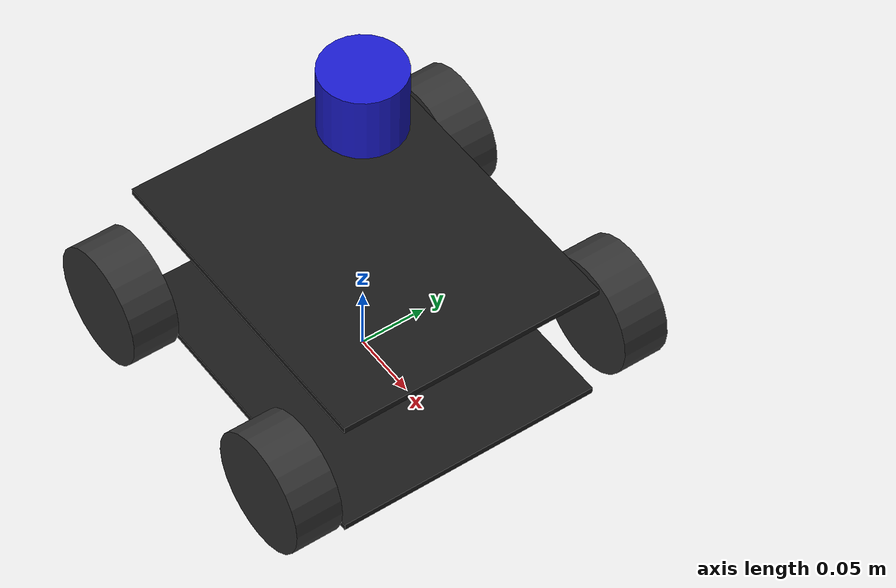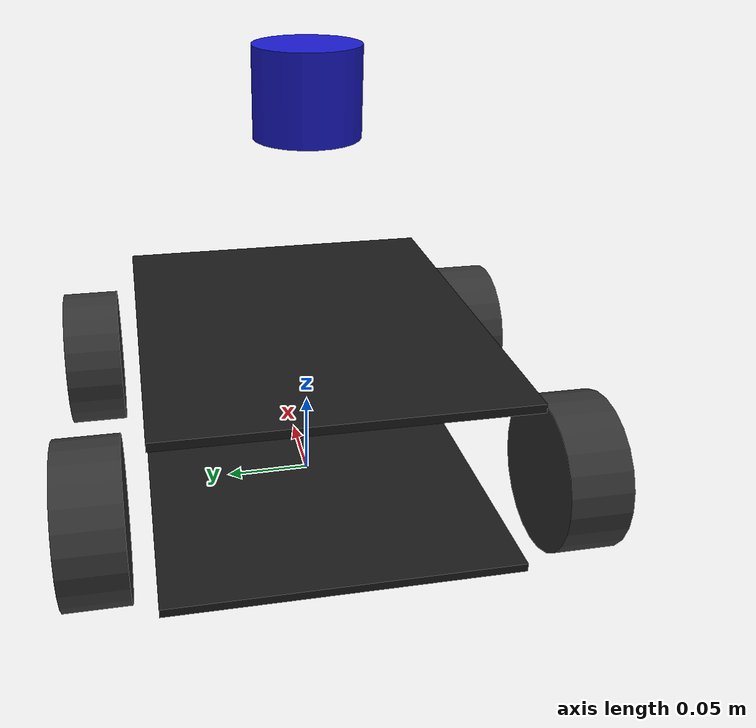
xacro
<?xml version="1.0"?>
<robot name="flexirover" xmlns:xacro="http://www.ros.org/wiki/xacro">

  <!-- PARAMETERS -->

  <!-- Base plates -->
  <xacro:property name="plate_length" value="0.246"/>
  <xacro:property name="plate_width"  value="0.200"/>
  <xacro:property name="plate_thickness" value="0.005"/>

  <!-- Vertical spacing between plates -->
  <xacro:property name="deck_height" value="0.10"/>

  <!-- Wheels -->
  <xacro:property name="wheel_radius" value="0.044"/>
  <xacro:property name="wheel_width"  value="0.035"/>

  <!-- Wheel positions -->
  <xacro:property name="wheel_x" value="0.095"/>
  <xacro:property name="wheel_y" value="0.13"/>  <!-- pushed outward -->
  <xacro:property name="wheel_z" value="0.044"/>

  <!-- LiDAR -->
  <xacro:property name="lidar_height" value="0.14"/>

  <!-- BASE LINK (reference) -->

  <link name="base_link"/>

  <!-- LOWER PLATE -->

  <link name="lower_plate">
    <inertial>
      <origin xyz="0 0 0" rpy="0 0 0"/>
      <mass value="2.0"/>
      <inertia ixx="0.02" iyy="0.02" izz="0.02"
               ixy="0.0" ixz="0.0" iyz="0.0"/>
    </inertial>

    <visual>
      <origin xyz="0 0 ${plate_thickness/2}" rpy="0 0 0"/>
      <geometry>
        <box size="${plate_length} ${plate_width} ${plate_thickness}"/>
      </geometry>
      <material name="black">
        <color rgba="0.1 0.1 0.1 1.0"/>
      </material>
    </visual>

    <collision>
      <origin xyz="0 0 ${plate_thickness/2}" rpy="0 0 0"/>
      <geometry>
        <box size="${plate_length} ${plate_width} ${plate_thickness}"/>
      </geometry>
    </collision>
  </link>

  <joint name="base_to_lower" type="fixed">
    <parent link="base_link"/>
    <child link="lower_plate"/>
    <origin xyz="0 0 0" rpy="0 0 0"/>
  </joint>

  <!-- UPPER PLATE -->

  <link name="upper_plate">
    <inertial>
      <origin xyz="0 0 0" rpy="0 0 0"/>
      <mass value="1.5"/>
      <inertia ixx="0.01" iyy="0.01" izz="0.01"
               ixy="0.0" ixz="0.0" iyz="0.0"/>
    </inertial>

    <visual>
      <origin xyz="0 0 ${plate_thickness/2}" rpy="0 0 0"/>
      <geometry>
        <box size="${plate_length} ${plate_width} ${plate_thickness}"/>
      </geometry>
      <material name="black"/>
    </visual>

    <collision>
      <origin xyz="0 0 ${plate_thickness/2}" rpy="0 0 0"/>
      <geometry>
        <box size="${plate_length} ${plate_width} ${plate_thickness}"/>
      </geometry>
    </collision>
  </link>

  <joint name="lower_to_upper" type="fixed">
    <parent link="lower_plate"/>
    <child link="upper_plate"/>
    <origin xyz="0 0 ${deck_height}" rpy="0 0 0"/>
  </joint>

  <!-- WHEEL MACRO -->

  <xacro:macro name="wheel" params="name x y">
    <link name="${name}_link">
      <inertial>
        <origin xyz="0 0 0" rpy="1.5708 0 0"/>
        <mass value="0.3"/>
        <inertia ixx="0.001" iyy="0.001" izz="0.001"
                 ixy="0.0" ixz="0.0" iyz="0.0"/>
      </inertial>

      <visual>
        <origin xyz="0 0 0" rpy="1.5708 0 0"/>
        <geometry>
          <cylinder radius="${wheel_radius}" length="${wheel_width}"/>
        </geometry>
        <material name="dark_gray">
          <color rgba="0.2 0.2 0.2 1.0"/>
        </material>
      </visual>

      <collision>
        <origin xyz="0 0 0" rpy="1.5708 0 0"/>
        <geometry>
          <cylinder radius="${wheel_radius}" length="${wheel_width}"/>
        </geometry>
      </collision>
    </link>

    <joint name="${name}_joint" type="continuous">
      <parent link="lower_plate"/>
      <child link="${name}_link"/>
      <origin xyz="${x} ${y} ${wheel_z}" rpy="0 0 0"/>
      <axis xyz="0 1 0"/>
    </joint>
  </xacro:macro>

  <!-- Wheels -->
  <xacro:wheel name="front_left_wheel"  x="${ wheel_x}" y="${ wheel_y}"/>
  <xacro:wheel name="front_right_wheel" x="${ wheel_x}" y="${-wheel_y}"/>
  <xacro:wheel name="rear_left_wheel"   x="${-wheel_x}" y="${ wheel_y}"/>
  <xacro:wheel name="rear_right_wheel"  x="${-wheel_x}" y="${-wheel_y}"/>

  <!-- LiDAR -->

  <!-- LiDAR -->

  <link name="lidar_link">
    <inertial>
      <origin xyz="0 0 0" rpy="0 0 0"/>
      <mass value="0.1"/>
      <inertia ixx="0.0001" iyy="0.0001" izz="0.0001"
               ixy="0.0" ixz="0.0" iyz="0.0"/>
    </inertial>

    <visual>
      <origin xyz="0 0 0" rpy="0 0 0"/>
      <geometry>
        <cylinder radius="0.03" length="0.05"/>
      </geometry>
      <material name="blue">
        <color rgba="0.1 0.1 0.8 1.0"/>
      </material>
    </visual>

    <collision>
      <origin xyz="0 0 0" rpy="0 0 0"/>
      <geometry>
        <cylinder radius="0.03" length="0.05"/>
      </geometry>
    </collision>
  </link>

  <joint name="lidar_joint" type="fixed">
    <parent link="upper_plate"/>
    <child link="lidar_link"/>
    <origin xyz="0 0 ${lidar_height}" rpy="0 0 0"/>
  </joint>

  <gazebo reference="lidar_link">
    <sensor name="lidar" type="lidar">
      <always_on>true</always_on>
      <visualize>true</visualize>
      <update_rate>10</update_rate>
      <topic>/scan</topic>
      <pose>0 0 0 0 0 0</pose>

      <ray>
        <scan>
          <horizontal>
            <samples>720</samples>
            <resolution>1</resolution>
            <min_angle>-3.14159</min_angle>
            <max_angle>3.14159</max_angle>
          </horizontal>
        </scan>

        <range>
          <min>0.12</min>
          <max>10.0</max>
          <resolution>0.01</resolution>
        </range>

        <noise>
          <type>gaussian</type>
          <mean>0.0</mean>
          <stddev>0.01</stddev>
        </noise>
      </ray>
    </sensor>
  </gazebo>
</robot>
